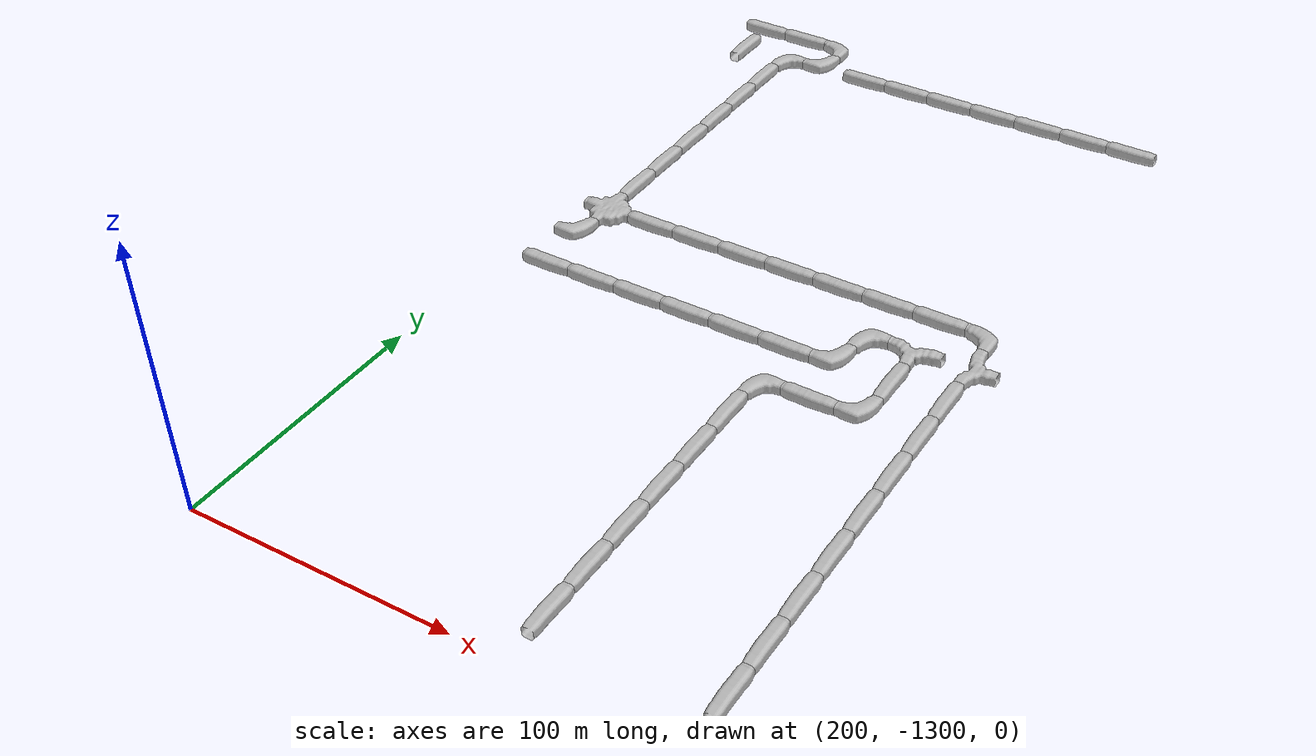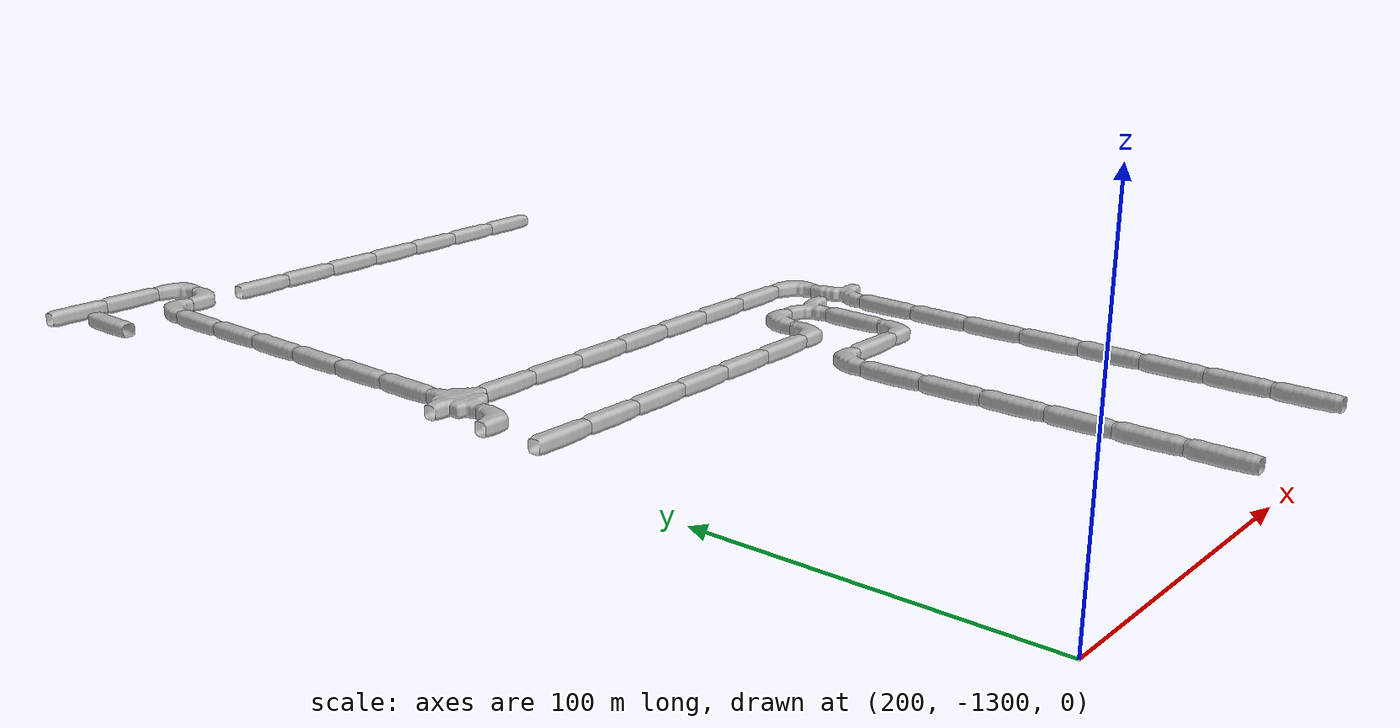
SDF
<sdf version="1.6">
 <world name="cave_32000_16">
  <include>
   <static>true</static>
   <name>cave_10_-47</name>
   <pose>200 -940 0 0 0 1.5707963267948966</pose>
   <uri>model://cave_straight_20m</uri>
  </include>
  <include>
   <static>true</static>
   <name>cave_11_-47</name>
   <pose>220 -940 0 0 0 1.5707963267948966</pose>
   <uri>model://cave_straight_20m</uri>
  </include>
  <include>
   <static>true</static>
   <name>cave_12_-47</name>
   <pose>240 -940 0 0 0 3.141592653589793</pose>
   <uri>model://cave_L_20m</uri>
  </include>
  <include>
   <static>true</static>
   <name>cave_12_-48</name>
   <pose>240 -960 0 0 0 1.5707963267948966</pose>
   <uri>model://cave_L_20m</uri>
  </include>
  <include>
   <static>true</static>
   <name>cave_11_-48</name>
   <pose>220 -960 0 0 0 -1.5707963267948966</pose>
   <uri>model://cave_L_20m</uri>
  </include>
  <include>
   <static>true</static>
   <name>cave_11_-49</name>
   <pose>220 -980 0 0 0 0.0</pose>
   <uri>model://cave_straight_20m</uri>
  </include>
  <include>
   <static>true</static>
   <name>cave_11_-50</name>
   <pose>220 -1000 0 0 0 0.0</pose>
   <uri>model://cave_straight_20m</uri>
  </include>
  <include>
   <static>true</static>
   <name>cave_11_-51</name>
   <pose>220 -1020 0 0 0 0.0</pose>
   <uri>model://cave_straight_20m</uri>
  </include>
  <include>
   <static>true</static>
   <name>cave_11_-52</name>
   <pose>220 -1040 0 0 0 0.0</pose>
   <uri>model://cave_straight_20m</uri>
  </include>
  <include>
   <static>true</static>
   <name>cave_11_-53</name>
   <pose>220 -1060 0 0 0 0.0</pose>
   <uri>model://cave_straight_20m</uri>
  </include>
  <include>
   <static>true</static>
   <name>cave_11_-54</name>
   <pose>220 -1080 0 0 0 0.0</pose>
   <uri>model://cave_straight_20m</uri>
  </include>
  <include>
   <static>true</static>
   <name>cave_11_-55</name>
   <pose>220 -1100 0 0 0 -1.5707963267948966</pose>
   <uri>model://cave_4way_20m</uri>
  </include>
  <include>
   <static>true</static>
   <name>cave_12_-55</name>
   <pose>240 -1100 0 0 0 1.5707963267948966</pose>
   <uri>model://cave_straight_20m</uri>
  </include>
  <include>
   <static>true</static>
   <name>cave_13_-55</name>
   <pose>260 -1100 0 0 0 1.5707963267948966</pose>
   <uri>model://cave_straight_20m</uri>
  </include>
  <include>
   <static>true</static>
   <name>cave_14_-55</name>
   <pose>280 -1100 0 0 0 1.5707963267948966</pose>
   <uri>model://cave_straight_20m</uri>
  </include>
  <include>
   <static>true</static>
   <name>cave_15_-55</name>
   <pose>300 -1100 0 0 0 1.5707963267948966</pose>
   <uri>model://cave_straight_20m</uri>
  </include>
  <include>
   <static>true</static>
   <name>cave_16_-55</name>
   <pose>320 -1100 0 0 0 1.5707963267948966</pose>
   <uri>model://cave_straight_20m</uri>
  </include>
  <include>
   <static>true</static>
   <name>cave_17_-55</name>
   <pose>340 -1100 0 0 0 1.5707963267948966</pose>
   <uri>model://cave_straight_20m</uri>
  </include>
  <include>
   <static>true</static>
   <name>cave_18_-55</name>
   <pose>360 -1100 0 0 0 1.5707963267948966</pose>
   <uri>model://cave_straight_20m</uri>
  </include>
  <include>
   <static>true</static>
   <name>cave_19_-55</name>
   <pose>380 -1100 0 0 0 3.141592653589793</pose>
   <uri>model://cave_L_20m</uri>
  </include>
  <include>
   <static>true</static>
   <name>cave_19_-56</name>
   <pose>380 -1120 0 0 0 -1.5707963267948966</pose>
   <uri>model://cave_3way_20m</uri>
  </include>
  <include>
   <static>true</static>
   <name>cave_19_-48</name>
   <pose>380 -960 0 0 0 1.5707963267948966</pose>
   <uri>model://cave_straight_20m</uri>
  </include>
  <include>
   <static>true</static>
   <name>cave_18_-48</name>
   <pose>360 -960 0 0 0 1.5707963267948966</pose>
   <uri>model://cave_straight_20m</uri>
  </include>
  <include>
   <static>true</static>
   <name>cave_17_-48</name>
   <pose>340 -960 0 0 0 1.5707963267948966</pose>
   <uri>model://cave_straight_20m</uri>
  </include>
  <include>
   <static>true</static>
   <name>cave_16_-48</name>
   <pose>320 -960 0 0 0 1.5707963267948966</pose>
   <uri>model://cave_straight_20m</uri>
  </include>
  <include>
   <static>true</static>
   <name>cave_15_-48</name>
   <pose>300 -960 0 0 0 1.5707963267948966</pose>
   <uri>model://cave_straight_20m</uri>
  </include>
  <include>
   <static>true</static>
   <name>cave_14_-48</name>
   <pose>280 -960 0 0 0 1.5707963267948966</pose>
   <uri>model://cave_straight_20m</uri>
  </include>
  <include>
   <static>true</static>
   <name>cave_13_-48</name>
   <pose>260 -960 0 0 0 1.5707963267948966</pose>
   <uri>model://cave_straight_20m</uri>
  </include>
  <include>
   <static>true</static>
   <name>cave_19_-57</name>
   <pose>380 -1140 0 0 0 0.0</pose>
   <uri>model://cave_straight_20m</uri>
  </include>
  <include>
   <static>true</static>
   <name>cave_19_-58</name>
   <pose>380 -1160 0 0 0 0.0</pose>
   <uri>model://cave_straight_20m</uri>
  </include>
  <include>
   <static>true</static>
   <name>cave_19_-59</name>
   <pose>380 -1180 0 0 0 0.0</pose>
   <uri>model://cave_straight_20m</uri>
  </include>
  <include>
   <static>true</static>
   <name>cave_19_-60</name>
   <pose>380 -1200 0 0 0 0.0</pose>
   <uri>model://cave_straight_20m</uri>
  </include>
  <include>
   <static>true</static>
   <name>cave_19_-61</name>
   <pose>380 -1220 0 0 0 0.0</pose>
   <uri>model://cave_straight_20m</uri>
  </include>
  <include>
   <static>true</static>
   <name>cave_19_-62</name>
   <pose>380 -1240 0 0 0 0.0</pose>
   <uri>model://cave_straight_20m</uri>
  </include>
  <include>
   <static>true</static>
   <name>cave_19_-63</name>
   <pose>380 -1260 0 0 0 0.0</pose>
   <uri>model://cave_straight_20m</uri>
  </include>
  <include>
   <static>true</static>
   <name>cave_19_-64</name>
   <pose>380 -1280 0 0 0 0.0</pose>
   <uri>model://cave_straight_20m</uri>
  </include>
  <include>
   <static>true</static>
   <name>cave_11_-56</name>
   <pose>220 -1120 0 0 0 1.5707963267948966</pose>
   <uri>model://cave_L_20m</uri>
  </include>
  <include>
   <static>true</static>
   <name>cave_11_-57</name>
   <pose>220 -1140 0 0 0 1.5707963267948966</pose>
   <uri>model://cave_straight_20m</uri>
  </include>
  <include>
   <static>true</static>
   <name>cave_12_-57</name>
   <pose>240 -1140 0 0 0 1.5707963267948966</pose>
   <uri>model://cave_straight_20m</uri>
  </include>
  <include>
   <static>true</static>
   <name>cave_13_-57</name>
   <pose>260 -1140 0 0 0 1.5707963267948966</pose>
   <uri>model://cave_straight_20m</uri>
  </include>
  <include>
   <static>true</static>
   <name>cave_14_-57</name>
   <pose>280 -1140 0 0 0 1.5707963267948966</pose>
   <uri>model://cave_straight_20m</uri>
  </include>
  <include>
   <static>true</static>
   <name>cave_15_-57</name>
   <pose>300 -1140 0 0 0 1.5707963267948966</pose>
   <uri>model://cave_straight_20m</uri>
  </include>
  <include>
   <static>true</static>
   <name>cave_16_-57</name>
   <pose>320 -1140 0 0 0 1.5707963267948966</pose>
   <uri>model://cave_straight_20m</uri>
  </include>
  <include>
   <static>true</static>
   <name>cave_17_-57</name>
   <pose>340 -1140 0 0 0 1.5707963267948966</pose>
   <uri>model://cave_L_20m</uri>
  </include>
  <include>
   <static>true</static>
   <name>cave_17_-56</name>
   <pose>340 -1120 0 0 0 -1.5707963267948966</pose>
   <uri>model://cave_L_20m</uri>
  </include>
  <include>
   <static>true</static>
   <name>cave_18_-56</name>
   <pose>360 -1120 0 0 0 3.141592653589793</pose>
   <uri>model://cave_3way_20m</uri>
  </include>
  <include>
   <static>true</static>
   <name>cave_18_-57</name>
   <pose>360 -1140 0 0 0 0.0</pose>
   <uri>model://cave_straight_20m</uri>
  </include>
  <include>
   <static>true</static>
   <name>cave_18_-58</name>
   <pose>360 -1160 0 0 0 1.5707963267948966</pose>
   <uri>model://cave_L_20m</uri>
  </include>
  <include>
   <static>true</static>
   <name>cave_17_-58</name>
   <pose>340 -1160 0 0 0 1.5707963267948966</pose>
   <uri>model://cave_straight_20m</uri>
  </include>
  <include>
   <static>true</static>
   <name>cave_16_-58</name>
   <pose>320 -1160 0 0 0 -1.5707963267948966</pose>
   <uri>model://cave_L_20m</uri>
  </include>
  <include>
   <static>true</static>
   <name>cave_16_-59</name>
   <pose>320 -1180 0 0 0 0.0</pose>
   <uri>model://cave_straight_20m</uri>
  </include>
  <include>
   <static>true</static>
   <name>cave_16_-60</name>
   <pose>320 -1200 0 0 0 0.0</pose>
   <uri>model://cave_straight_20m</uri>
  </include>
  <include>
   <static>true</static>
   <name>cave_16_-61</name>
   <pose>320 -1220 0 0 0 0.0</pose>
   <uri>model://cave_straight_20m</uri>
  </include>
  <include>
   <static>true</static>
   <name>cave_16_-62</name>
   <pose>320 -1240 0 0 0 0.0</pose>
   <uri>model://cave_straight_20m</uri>
  </include>
  <include>
   <static>true</static>
   <name>cave_16_-63</name>
   <pose>320 -1260 0 0 0 0.0</pose>
   <uri>model://cave_straight_20m</uri>
  </include>
  <include>
   <static>true</static>
   <name>cave_16_-64</name>
   <pose>320 -1280 0 0 0 0.0</pose>
   <uri>model://cave_straight_20m</uri>
  </include>
  <include>
   <static>true</static>
   <name>cave_10_-48</name>
   <pose>200 -960 0 0 0 0.0</pose>
   <uri>model://cave_straight_20m</uri>
  </include>
 </world>
</sdf>
